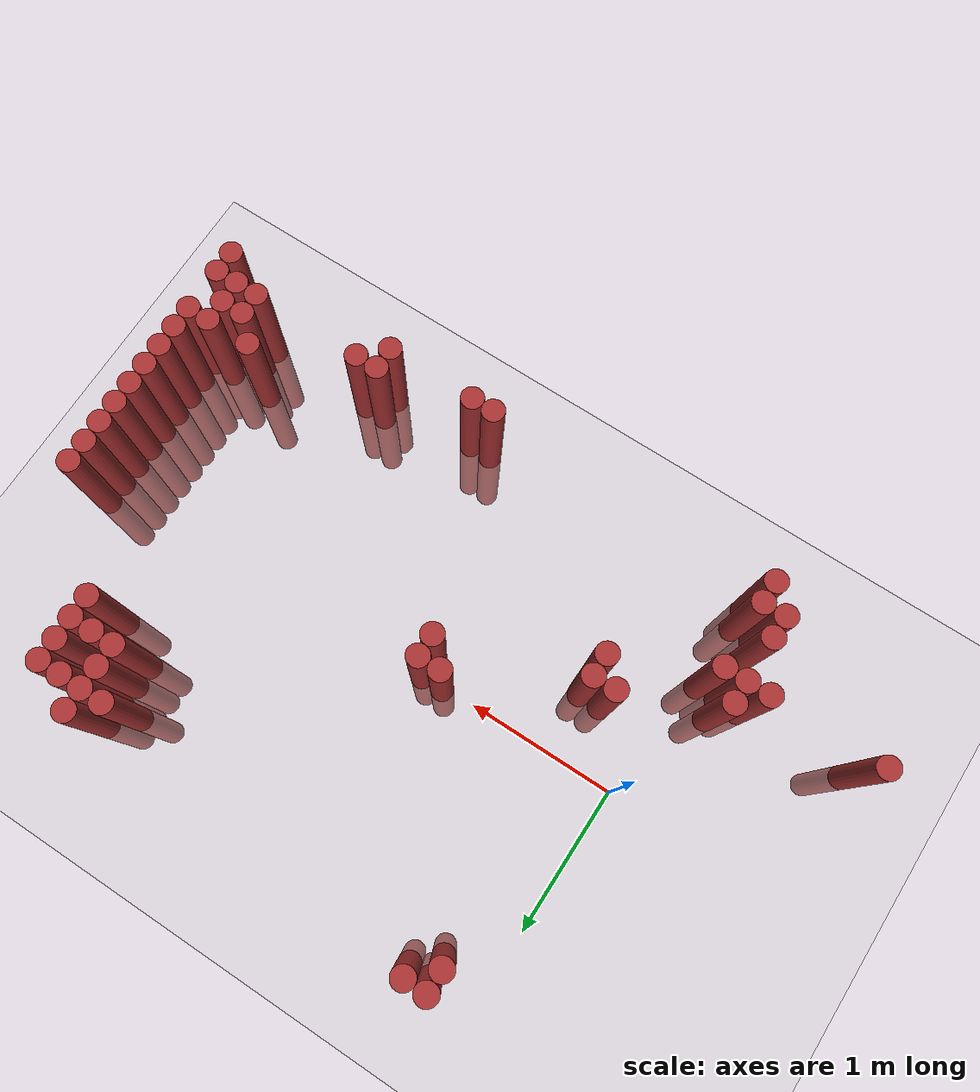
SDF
<sdf version="1.6">
 <world name="default">
  <model name="ground_plane">
   <static>1</static>
   <link name="link">
    <collision name="collision">
     <geometry><plane><normal>0 0 1</normal><size>100 100</size></plane></geometry>
     <surface><friction><ode><mu>100</mu><mu2>50</mu2></ode></friction></surface>
    </collision>
    <visual name="visual">
     <cast_shadows>0</cast_shadows>
     <geometry><plane><normal>0 0 1</normal><size>100 100</size></plane></geometry>
     <material>
      <script><uri>file://media/materials/scripts/gazebo.material</uri><name>Gazebo/Grey</name></script>
     </material>
    </visual>
   </link>
  </model>
  <model name="unit_cylinder_329">
   <static>1</static>
   <pose>-1.175000 -0.875000 0.000000 0.000000 0.000000 0.000000</pose>
   <link name="link">
    <inertial>
     <mass>1</mass>
     <inertia><ixx>0.145833</ixx><ixy>0</ixy><ixz>0</ixz><iyy>0.145833</iyy><iyz>0</iyz><izz>0.125</izz></inertia>
    </inertial>
    <collision name="collision">
     <geometry><cylinder><radius>0.075000</radius><length>1.5</length></cylinder></geometry>
    </collision>
    <visual name="visual">
     <geometry><cylinder><radius>0.075000</radius><length>1.5</length></cylinder></geometry>
     <material>
      <ambient>0.648000 0.192000 0.192000 1</ambient>
      <diffuse>0.648000 0.192000 0.192000 1</diffuse>
     </material>
     <material>
      <script><name>Gazebo/Grey</name><uri>file://media/materials/scripts/gazebo.material</uri></script>
     </material>
    </visual>
   </link>
  </model>
  <model name="unit_cylinder_340">
   <static>1</static>
   <pose>-0.425000 -0.875000 0.000000 0.000000 0.000000 0.000000</pose>
   <link name="link">
    <inertial>
     <mass>1</mass>
     <inertia><ixx>0.145833</ixx><ixy>0</ixy><ixz>0</ixz><iyy>0.145833</iyy><iyz>0</iyz><izz>0.125</izz></inertia>
    </inertial>
    <collision name="collision">
     <geometry><cylinder><radius>0.075000</radius><length>1.5</length></cylinder></geometry>
    </collision>
    <visual name="visual">
     <geometry><cylinder><radius>0.075000</radius><length>1.5</length></cylinder></geometry>
     <material>
      <ambient>0.648000 0.192000 0.192000 1</ambient>
      <diffuse>0.648000 0.192000 0.192000 1</diffuse>
     </material>
     <material>
      <script><name>Gazebo/Grey</name><uri>file://media/materials/scripts/gazebo.material</uri></script>
     </material>
    </visual>
   </link>
  </model>
  <model name="unit_cylinder_341">
   <static>1</static>
   <pose>-0.275000 -1.325000 0.000000 0.000000 0.000000 0.000000</pose>
   <link name="link">
    <inertial>
     <mass>1</mass>
     <inertia><ixx>0.145833</ixx><ixy>0</ixy><ixz>0</ixz><iyy>0.145833</iyy><iyz>0</iyz><izz>0.125</izz></inertia>
    </inertial>
    <collision name="collision">
     <geometry><cylinder><radius>0.075000</radius><length>1.5</length></cylinder></geometry>
    </collision>
    <visual name="visual">
     <geometry><cylinder><radius>0.075000</radius><length>1.5</length></cylinder></geometry>
     <material>
      <ambient>0.648000 0.192000 0.192000 1</ambient>
      <diffuse>0.648000 0.192000 0.192000 1</diffuse>
     </material>
     <material>
      <script><name>Gazebo/Grey</name><uri>file://media/materials/scripts/gazebo.material</uri></script>
     </material>
    </visual>
   </link>
  </model>
  <model name="unit_cylinder_342">
   <static>1</static>
   <pose>-0.275000 -1.175000 0.000000 0.000000 0.000000 0.000000</pose>
   <link name="link">
    <inertial>
     <mass>1</mass>
     <inertia><ixx>0.145833</ixx><ixy>0</ixy><ixz>0</ixz><iyy>0.145833</iyy><iyz>0</iyz><izz>0.125</izz></inertia>
    </inertial>
    <collision name="collision">
     <geometry><cylinder><radius>0.075000</radius><length>1.5</length></cylinder></geometry>
    </collision>
    <visual name="visual">
     <geometry><cylinder><radius>0.075000</radius><length>1.5</length></cylinder></geometry>
     <material>
      <ambient>0.648000 0.192000 0.192000 1</ambient>
      <diffuse>0.648000 0.192000 0.192000 1</diffuse>
     </material>
     <material>
      <script><name>Gazebo/Grey</name><uri>file://media/materials/scripts/gazebo.material</uri></script>
     </material>
    </visual>
   </link>
  </model>
  <model name="unit_cylinder_343">
   <static>1</static>
   <pose>-0.275000 -0.875000 0.000000 0.000000 0.000000 0.000000</pose>
   <link name="link">
    <inertial>
     <mass>1</mass>
     <inertia><ixx>0.145833</ixx><ixy>0</ixy><ixz>0</ixz><iyy>0.145833</iyy><iyz>0</iyz><izz>0.125</izz></inertia>
    </inertial>
    <collision name="collision">
     <geometry><cylinder><radius>0.075000</radius><length>1.5</length></cylinder></geometry>
    </collision>
    <visual name="visual">
     <geometry><cylinder><radius>0.075000</radius><length>1.5</length></cylinder></geometry>
     <material>
      <ambient>0.648000 0.192000 0.192000 1</ambient>
      <diffuse>0.648000 0.192000 0.192000 1</diffuse>
     </material>
     <material>
      <script><name>Gazebo/Grey</name><uri>file://media/materials/scripts/gazebo.material</uri></script>
     </material>
    </visual>
   </link>
  </model>
  <model name="unit_cylinder_344">
   <static>1</static>
   <pose>-0.275000 -0.725000 0.000000 0.000000 0.000000 0.000000</pose>
   <link name="link">
    <inertial>
     <mass>1</mass>
     <inertia><ixx>0.145833</ixx><ixy>0</ixy><ixz>0</ixz><iyy>0.145833</iyy><iyz>0</iyz><izz>0.125</izz></inertia>
    </inertial>
    <collision name="collision">
     <geometry><cylinder><radius>0.075000</radius><length>1.5</length></cylinder></geometry>
    </collision>
    <visual name="visual">
     <geometry><cylinder><radius>0.075000</radius><length>1.5</length></cylinder></geometry>
     <material>
      <ambient>0.648000 0.192000 0.192000 1</ambient>
      <diffuse>0.648000 0.192000 0.192000 1</diffuse>
     </material>
     <material>
      <script><name>Gazebo/Grey</name><uri>file://media/materials/scripts/gazebo.material</uri></script>
     </material>
    </visual>
   </link>
  </model>
  <model name="unit_cylinder_345">
   <static>1</static>
   <pose>-0.125000 -1.475000 0.000000 0.000000 0.000000 0.000000</pose>
   <link name="link">
    <inertial>
     <mass>1</mass>
     <inertia><ixx>0.145833</ixx><ixy>0</ixy><ixz>0</ixz><iyy>0.145833</iyy><iyz>0</iyz><izz>0.125</izz></inertia>
    </inertial>
    <collision name="collision">
     <geometry><cylinder><radius>0.075000</radius><length>1.5</length></cylinder></geometry>
    </collision>
    <visual name="visual">
     <geometry><cylinder><radius>0.075000</radius><length>1.5</length></cylinder></geometry>
     <material>
      <ambient>0.648000 0.192000 0.192000 1</ambient>
      <diffuse>0.648000 0.192000 0.192000 1</diffuse>
     </material>
     <material>
      <script><name>Gazebo/Grey</name><uri>file://media/materials/scripts/gazebo.material</uri></script>
     </material>
    </visual>
   </link>
  </model>
  <model name="unit_cylinder_346">
   <static>1</static>
   <pose>-0.125000 -1.325000 0.000000 0.000000 0.000000 0.000000</pose>
   <link name="link">
    <inertial>
     <mass>1</mass>
     <inertia><ixx>0.145833</ixx><ixy>0</ixy><ixz>0</ixz><iyy>0.145833</iyy><iyz>0</iyz><izz>0.125</izz></inertia>
    </inertial>
    <collision name="collision">
     <geometry><cylinder><radius>0.075000</radius><length>1.5</length></cylinder></geometry>
    </collision>
    <visual name="visual">
     <geometry><cylinder><radius>0.075000</radius><length>1.5</length></cylinder></geometry>
     <material>
      <ambient>0.648000 0.192000 0.192000 1</ambient>
      <diffuse>0.648000 0.192000 0.192000 1</diffuse>
     </material>
     <material>
      <script><name>Gazebo/Grey</name><uri>file://media/materials/scripts/gazebo.material</uri></script>
     </material>
    </visual>
   </link>
  </model>
  <model name="unit_cylinder_347">
   <static>1</static>
   <pose>-0.125000 -0.875000 0.000000 0.000000 0.000000 0.000000</pose>
   <link name="link">
    <inertial>
     <mass>1</mass>
     <inertia><ixx>0.145833</ixx><ixy>0</ixy><ixz>0</ixz><iyy>0.145833</iyy><iyz>0</iyz><izz>0.125</izz></inertia>
    </inertial>
    <collision name="collision">
     <geometry><cylinder><radius>0.075000</radius><length>1.5</length></cylinder></geometry>
    </collision>
    <visual name="visual">
     <geometry><cylinder><radius>0.075000</radius><length>1.5</length></cylinder></geometry>
     <material>
      <ambient>0.648000 0.192000 0.192000 1</ambient>
      <diffuse>0.648000 0.192000 0.192000 1</diffuse>
     </material>
     <material>
      <script><name>Gazebo/Grey</name><uri>file://media/materials/scripts/gazebo.material</uri></script>
     </material>
    </visual>
   </link>
  </model>
  <model name="unit_cylinder_348">
   <static>1</static>
   <pose>0.325000 -0.425000 0.000000 0.000000 0.000000 0.000000</pose>
   <link name="link">
    <inertial>
     <mass>1</mass>
     <inertia><ixx>0.145833</ixx><ixy>0</ixy><ixz>0</ixz><iyy>0.145833</iyy><iyz>0</iyz><izz>0.125</izz></inertia>
    </inertial>
    <collision name="collision">
     <geometry><cylinder><radius>0.075000</radius><length>1.5</length></cylinder></geometry>
    </collision>
    <visual name="visual">
     <geometry><cylinder><radius>0.075000</radius><length>1.5</length></cylinder></geometry>
     <material>
      <ambient>0.648000 0.192000 0.192000 1</ambient>
      <diffuse>0.648000 0.192000 0.192000 1</diffuse>
     </material>
     <material>
      <script><name>Gazebo/Grey</name><uri>file://media/materials/scripts/gazebo.material</uri></script>
     </material>
    </visual>
   </link>
  </model>
  <model name="unit_cylinder_349">
   <static>1</static>
   <pose>0.325000 1.375000 0.000000 0.000000 0.000000 0.000000</pose>
   <link name="link">
    <inertial>
     <mass>1</mass>
     <inertia><ixx>0.145833</ixx><ixy>0</ixy><ixz>0</ixz><iyy>0.145833</iyy><iyz>0</iyz><izz>0.125</izz></inertia>
    </inertial>
    <collision name="collision">
     <geometry><cylinder><radius>0.075000</radius><length>1.5</length></cylinder></geometry>
    </collision>
    <visual name="visual">
     <geometry><cylinder><radius>0.075000</radius><length>1.5</length></cylinder></geometry>
     <material>
      <ambient>0.648000 0.192000 0.192000 1</ambient>
      <diffuse>0.648000 0.192000 0.192000 1</diffuse>
     </material>
     <material>
      <script><name>Gazebo/Grey</name><uri>file://media/materials/scripts/gazebo.material</uri></script>
     </material>
    </visual>
   </link>
  </model>
  <model name="unit_cylinder_350">
   <static>1</static>
   <pose>0.325000 1.525000 0.000000 0.000000 0.000000 0.000000</pose>
   <link name="link">
    <inertial>
     <mass>1</mass>
     <inertia><ixx>0.145833</ixx><ixy>0</ixy><ixz>0</ixz><iyy>0.145833</iyy><iyz>0</iyz><izz>0.125</izz></inertia>
    </inertial>
    <collision name="collision">
     <geometry><cylinder><radius>0.075000</radius><length>1.5</length></cylinder></geometry>
    </collision>
    <visual name="visual">
     <geometry><cylinder><radius>0.075000</radius><length>1.5</length></cylinder></geometry>
     <material>
      <ambient>0.648000 0.192000 0.192000 1</ambient>
      <diffuse>0.648000 0.192000 0.192000 1</diffuse>
     </material>
     <material>
      <script><name>Gazebo/Grey</name><uri>file://media/materials/scripts/gazebo.material</uri></script>
     </material>
    </visual>
   </link>
  </model>
  <model name="unit_cylinder_351">
   <static>1</static>
   <pose>0.475000 -0.575000 0.000000 0.000000 0.000000 0.000000</pose>
   <link name="link">
    <inertial>
     <mass>1</mass>
     <inertia><ixx>0.145833</ixx><ixy>0</ixy><ixz>0</ixz><iyy>0.145833</iyy><iyz>0</iyz><izz>0.125</izz></inertia>
    </inertial>
    <collision name="collision">
     <geometry><cylinder><radius>0.075000</radius><length>1.5</length></cylinder></geometry>
    </collision>
    <visual name="visual">
     <geometry><cylinder><radius>0.075000</radius><length>1.5</length></cylinder></geometry>
     <material>
      <ambient>0.648000 0.192000 0.192000 1</ambient>
      <diffuse>0.648000 0.192000 0.192000 1</diffuse>
     </material>
     <material>
      <script><name>Gazebo/Grey</name><uri>file://media/materials/scripts/gazebo.material</uri></script>
     </material>
    </visual>
   </link>
  </model>
  <model name="unit_cylinder_352">
   <static>1</static>
   <pose>0.475000 -0.425000 0.000000 0.000000 0.000000 0.000000</pose>
   <link name="link">
    <inertial>
     <mass>1</mass>
     <inertia><ixx>0.145833</ixx><ixy>0</ixy><ixz>0</ixz><iyy>0.145833</iyy><iyz>0</iyz><izz>0.125</izz></inertia>
    </inertial>
    <collision name="collision">
     <geometry><cylinder><radius>0.075000</radius><length>1.5</length></cylinder></geometry>
    </collision>
    <visual name="visual">
     <geometry><cylinder><radius>0.075000</radius><length>1.5</length></cylinder></geometry>
     <material>
      <ambient>0.648000 0.192000 0.192000 1</ambient>
      <diffuse>0.648000 0.192000 0.192000 1</diffuse>
     </material>
     <material>
      <script><name>Gazebo/Grey</name><uri>file://media/materials/scripts/gazebo.material</uri></script>
     </material>
    </visual>
   </link>
  </model>
  <model name="unit_cylinder_353">
   <static>1</static>
   <pose>0.475000 1.525000 0.000000 0.000000 0.000000 0.000000</pose>
   <link name="link">
    <inertial>
     <mass>1</mass>
     <inertia><ixx>0.145833</ixx><ixy>0</ixy><ixz>0</ixz><iyy>0.145833</iyy><iyz>0</iyz><izz>0.125</izz></inertia>
    </inertial>
    <collision name="collision">
     <geometry><cylinder><radius>0.075000</radius><length>1.5</length></cylinder></geometry>
    </collision>
    <visual name="visual">
     <geometry><cylinder><radius>0.075000</radius><length>1.5</length></cylinder></geometry>
     <material>
      <ambient>0.648000 0.192000 0.192000 1</ambient>
      <diffuse>0.648000 0.192000 0.192000 1</diffuse>
     </material>
     <material>
      <script><name>Gazebo/Grey</name><uri>file://media/materials/scripts/gazebo.material</uri></script>
     </material>
    </visual>
   </link>
  </model>
  <model name="unit_cylinder_367">
   <static>1</static>
   <pose>1.225000 0.025000 0.000000 0.000000 0.000000 0.000000</pose>
   <link name="link">
    <inertial>
     <mass>1</mass>
     <inertia><ixx>0.145833</ixx><ixy>0</ixy><ixz>0</ixz><iyy>0.145833</iyy><iyz>0</iyz><izz>0.125</izz></inertia>
    </inertial>
    <collision name="collision">
     <geometry><cylinder><radius>0.075000</radius><length>1.5</length></cylinder></geometry>
    </collision>
    <visual name="visual">
     <geometry><cylinder><radius>0.075000</radius><length>1.5</length></cylinder></geometry>
     <material>
      <ambient>0.648000 0.192000 0.192000 1</ambient>
      <diffuse>0.648000 0.192000 0.192000 1</diffuse>
     </material>
     <material>
      <script><name>Gazebo/Grey</name><uri>file://media/materials/scripts/gazebo.material</uri></script>
     </material>
    </visual>
   </link>
  </model>
  <model name="unit_cylinder_370">
   <static>1</static>
   <pose>1.375000 -0.125000 0.000000 0.000000 0.000000 0.000000</pose>
   <link name="link">
    <inertial>
     <mass>1</mass>
     <inertia><ixx>0.145833</ixx><ixy>0</ixy><ixz>0</ixz><iyy>0.145833</iyy><iyz>0</iyz><izz>0.125</izz></inertia>
    </inertial>
    <collision name="collision">
     <geometry><cylinder><radius>0.075000</radius><length>1.5</length></cylinder></geometry>
    </collision>
    <visual name="visual">
     <geometry><cylinder><radius>0.075000</radius><length>1.5</length></cylinder></geometry>
     <material>
      <ambient>0.648000 0.192000 0.192000 1</ambient>
      <diffuse>0.648000 0.192000 0.192000 1</diffuse>
     </material>
     <material>
      <script><name>Gazebo/Grey</name><uri>file://media/materials/scripts/gazebo.material</uri></script>
     </material>
    </visual>
   </link>
  </model>
  <model name="unit_cylinder_371">
   <static>1</static>
   <pose>1.375000 0.025000 0.000000 0.000000 0.000000 0.000000</pose>
   <link name="link">
    <inertial>
     <mass>1</mass>
     <inertia><ixx>0.145833</ixx><ixy>0</ixy><ixz>0</ixz><iyy>0.145833</iyy><iyz>0</iyz><izz>0.125</izz></inertia>
    </inertial>
    <collision name="collision">
     <geometry><cylinder><radius>0.075000</radius><length>1.5</length></cylinder></geometry>
    </collision>
    <visual name="visual">
     <geometry><cylinder><radius>0.075000</radius><length>1.5</length></cylinder></geometry>
     <material>
      <ambient>0.648000 0.192000 0.192000 1</ambient>
      <diffuse>0.648000 0.192000 0.192000 1</diffuse>
     </material>
     <material>
      <script><name>Gazebo/Grey</name><uri>file://media/materials/scripts/gazebo.material</uri></script>
     </material>
    </visual>
   </link>
  </model>
  <model name="unit_cylinder_373">
   <static>1</static>
   <pose>1.825000 -1.475000 0.000000 0.000000 0.000000 0.000000</pose>
   <link name="link">
    <inertial>
     <mass>1</mass>
     <inertia><ixx>0.145833</ixx><ixy>0</ixy><ixz>0</ixz><iyy>0.145833</iyy><iyz>0</iyz><izz>0.125</izz></inertia>
    </inertial>
    <collision name="collision">
     <geometry><cylinder><radius>0.075000</radius><length>1.5</length></cylinder></geometry>
    </collision>
    <visual name="visual">
     <geometry><cylinder><radius>0.075000</radius><length>1.5</length></cylinder></geometry>
     <material>
      <ambient>0.648000 0.192000 0.192000 1</ambient>
      <diffuse>0.648000 0.192000 0.192000 1</diffuse>
     </material>
     <material>
      <script><name>Gazebo/Grey</name><uri>file://media/materials/scripts/gazebo.material</uri></script>
     </material>
    </visual>
   </link>
  </model>
  <model name="unit_cylinder_375">
   <static>1</static>
   <pose>1.975000 -1.475000 0.000000 0.000000 0.000000 0.000000</pose>
   <link name="link">
    <inertial>
     <mass>1</mass>
     <inertia><ixx>0.145833</ixx><ixy>0</ixy><ixz>0</ixz><iyy>0.145833</iyy><iyz>0</iyz><izz>0.125</izz></inertia>
    </inertial>
    <collision name="collision">
     <geometry><cylinder><radius>0.075000</radius><length>1.5</length></cylinder></geometry>
    </collision>
    <visual name="visual">
     <geometry><cylinder><radius>0.075000</radius><length>1.5</length></cylinder></geometry>
     <material>
      <ambient>0.648000 0.192000 0.192000 1</ambient>
      <diffuse>0.648000 0.192000 0.192000 1</diffuse>
     </material>
     <material>
      <script><name>Gazebo/Grey</name><uri>file://media/materials/scripts/gazebo.material</uri></script>
     </material>
    </visual>
   </link>
  </model>
  <model name="unit_cylinder_391">
   <static>1</static>
   <pose>2.575000 -1.475000 0.000000 0.000000 0.000000 0.000000</pose>
   <link name="link">
    <inertial>
     <mass>1</mass>
     <inertia><ixx>0.145833</ixx><ixy>0</ixy><ixz>0</ixz><iyy>0.145833</iyy><iyz>0</iyz><izz>0.125</izz></inertia>
    </inertial>
    <collision name="collision">
     <geometry><cylinder><radius>0.075000</radius><length>1.5</length></cylinder></geometry>
    </collision>
    <visual name="visual">
     <geometry><cylinder><radius>0.075000</radius><length>1.5</length></cylinder></geometry>
     <material>
      <ambient>0.648000 0.192000 0.192000 1</ambient>
      <diffuse>0.648000 0.192000 0.192000 1</diffuse>
     </material>
     <material>
      <script><name>Gazebo/Grey</name><uri>file://media/materials/scripts/gazebo.material</uri></script>
     </material>
    </visual>
   </link>
  </model>
  <model name="unit_cylinder_392">
   <static>1</static>
   <pose>2.575000 -1.325000 0.000000 0.000000 0.000000 0.000000</pose>
   <link name="link">
    <inertial>
     <mass>1</mass>
     <inertia><ixx>0.145833</ixx><ixy>0</ixy><ixz>0</ixz><iyy>0.145833</iyy><iyz>0</iyz><izz>0.125</izz></inertia>
    </inertial>
    <collision name="collision">
     <geometry><cylinder><radius>0.075000</radius><length>1.5</length></cylinder></geometry>
    </collision>
    <visual name="visual">
     <geometry><cylinder><radius>0.075000</radius><length>1.5</length></cylinder></geometry>
     <material>
      <ambient>0.648000 0.192000 0.192000 1</ambient>
      <diffuse>0.648000 0.192000 0.192000 1</diffuse>
     </material>
     <material>
      <script><name>Gazebo/Grey</name><uri>file://media/materials/scripts/gazebo.material</uri></script>
     </material>
    </visual>
   </link>
  </model>
  <model name="unit_cylinder_400">
   <static>1</static>
   <pose>2.725000 -1.325000 0.000000 0.000000 0.000000 0.000000</pose>
   <link name="link">
    <inertial>
     <mass>1</mass>
     <inertia><ixx>0.145833</ixx><ixy>0</ixy><ixz>0</ixz><iyy>0.145833</iyy><iyz>0</iyz><izz>0.125</izz></inertia>
    </inertial>
    <collision name="collision">
     <geometry><cylinder><radius>0.075000</radius><length>1.5</length></cylinder></geometry>
    </collision>
    <visual name="visual">
     <geometry><cylinder><radius>0.075000</radius><length>1.5</length></cylinder></geometry>
     <material>
      <ambient>0.648000 0.192000 0.192000 1</ambient>
      <diffuse>0.648000 0.192000 0.192000 1</diffuse>
     </material>
     <material>
      <script><name>Gazebo/Grey</name><uri>file://media/materials/scripts/gazebo.material</uri></script>
     </material>
    </visual>
   </link>
  </model>
  <model name="unit_cylinder_401">
   <static>1</static>
   <pose>2.725000 1.225000 0.000000 0.000000 0.000000 0.000000</pose>
   <link name="link">
    <inertial>
     <mass>1</mass>
     <inertia><ixx>0.145833</ixx><ixy>0</ixy><ixz>0</ixz><iyy>0.145833</iyy><iyz>0</iyz><izz>0.125</izz></inertia>
    </inertial>
    <collision name="collision">
     <geometry><cylinder><radius>0.075000</radius><length>1.5</length></cylinder></geometry>
    </collision>
    <visual name="visual">
     <geometry><cylinder><radius>0.075000</radius><length>1.5</length></cylinder></geometry>
     <material>
      <ambient>0.648000 0.192000 0.192000 1</ambient>
      <diffuse>0.648000 0.192000 0.192000 1</diffuse>
     </material>
     <material>
      <script><name>Gazebo/Grey</name><uri>file://media/materials/scripts/gazebo.material</uri></script>
     </material>
    </visual>
   </link>
  </model>
  <model name="unit_cylinder_405">
   <static>1</static>
   <pose>2.875000 0.925000 0.000000 0.000000 0.000000 0.000000</pose>
   <link name="link">
    <inertial>
     <mass>1</mass>
     <inertia><ixx>0.145833</ixx><ixy>0</ixy><ixz>0</ixz><iyy>0.145833</iyy><iyz>0</iyz><izz>0.125</izz></inertia>
    </inertial>
    <collision name="collision">
     <geometry><cylinder><radius>0.075000</radius><length>1.5</length></cylinder></geometry>
    </collision>
    <visual name="visual">
     <geometry><cylinder><radius>0.075000</radius><length>1.5</length></cylinder></geometry>
     <material>
      <ambient>0.648000 0.192000 0.192000 1</ambient>
      <diffuse>0.648000 0.192000 0.192000 1</diffuse>
     </material>
     <material>
      <script><name>Gazebo/Grey</name><uri>file://media/materials/scripts/gazebo.material</uri></script>
     </material>
    </visual>
   </link>
  </model>
  <model name="unit_cylinder_406">
   <static>1</static>
   <pose>2.875000 1.075000 0.000000 0.000000 0.000000 0.000000</pose>
   <link name="link">
    <inertial>
     <mass>1</mass>
     <inertia><ixx>0.145833</ixx><ixy>0</ixy><ixz>0</ixz><iyy>0.145833</iyy><iyz>0</iyz><izz>0.125</izz></inertia>
    </inertial>
    <collision name="collision">
     <geometry><cylinder><radius>0.075000</radius><length>1.5</length></cylinder></geometry>
    </collision>
    <visual name="visual">
     <geometry><cylinder><radius>0.075000</radius><length>1.5</length></cylinder></geometry>
     <material>
      <ambient>0.648000 0.192000 0.192000 1</ambient>
      <diffuse>0.648000 0.192000 0.192000 1</diffuse>
     </material>
     <material>
      <script><name>Gazebo/Grey</name><uri>file://media/materials/scripts/gazebo.material</uri></script>
     </material>
    </visual>
   </link>
  </model>
  <model name="unit_cylinder_407">
   <static>1</static>
   <pose>2.875000 1.225000 0.000000 0.000000 0.000000 0.000000</pose>
   <link name="link">
    <inertial>
     <mass>1</mass>
     <inertia><ixx>0.145833</ixx><ixy>0</ixy><ixz>0</ixz><iyy>0.145833</iyy><iyz>0</iyz><izz>0.125</izz></inertia>
    </inertial>
    <collision name="collision">
     <geometry><cylinder><radius>0.075000</radius><length>1.5</length></cylinder></geometry>
    </collision>
    <visual name="visual">
     <geometry><cylinder><radius>0.075000</radius><length>1.5</length></cylinder></geometry>
     <material>
      <ambient>0.648000 0.192000 0.192000 1</ambient>
      <diffuse>0.648000 0.192000 0.192000 1</diffuse>
     </material>
     <material>
      <script><name>Gazebo/Grey</name><uri>file://media/materials/scripts/gazebo.material</uri></script>
     </material>
    </visual>
   </link>
  </model>
  <model name="unit_cylinder_408">
   <static>1</static>
   <pose>2.875000 1.375000 0.000000 0.000000 0.000000 0.000000</pose>
   <link name="link">
    <inertial>
     <mass>1</mass>
     <inertia><ixx>0.145833</ixx><ixy>0</ixy><ixz>0</ixz><iyy>0.145833</iyy><iyz>0</iyz><izz>0.125</izz></inertia>
    </inertial>
    <collision name="collision">
     <geometry><cylinder><radius>0.075000</radius><length>1.5</length></cylinder></geometry>
    </collision>
    <visual name="visual">
     <geometry><cylinder><radius>0.075000</radius><length>1.5</length></cylinder></geometry>
     <material>
      <ambient>0.648000 0.192000 0.192000 1</ambient>
      <diffuse>0.648000 0.192000 0.192000 1</diffuse>
     </material>
     <material>
      <script><name>Gazebo/Grey</name><uri>file://media/materials/scripts/gazebo.material</uri></script>
     </material>
    </visual>
   </link>
  </model>
  <model name="unit_cylinder_409">
   <static>1</static>
   <pose>3.025000 0.925000 0.000000 0.000000 0.000000 0.000000</pose>
   <link name="link">
    <inertial>
     <mass>1</mass>
     <inertia><ixx>0.145833</ixx><ixy>0</ixy><ixz>0</ixz><iyy>0.145833</iyy><iyz>0</iyz><izz>0.125</izz></inertia>
    </inertial>
    <collision name="collision">
     <geometry><cylinder><radius>0.075000</radius><length>1.5</length></cylinder></geometry>
    </collision>
    <visual name="visual">
     <geometry><cylinder><radius>0.075000</radius><length>1.5</length></cylinder></geometry>
     <material>
      <ambient>0.648000 0.192000 0.192000 1</ambient>
      <diffuse>0.648000 0.192000 0.192000 1</diffuse>
     </material>
     <material>
      <script><name>Gazebo/Grey</name><uri>file://media/materials/scripts/gazebo.material</uri></script>
     </material>
    </visual>
   </link>
  </model>
  <model name="unit_cylinder_410">
   <static>1</static>
   <pose>3.025000 1.225000 0.000000 0.000000 0.000000 0.000000</pose>
   <link name="link">
    <inertial>
     <mass>1</mass>
     <inertia><ixx>0.145833</ixx><ixy>0</ixy><ixz>0</ixz><iyy>0.145833</iyy><iyz>0</iyz><izz>0.125</izz></inertia>
    </inertial>
    <collision name="collision">
     <geometry><cylinder><radius>0.075000</radius><length>1.5</length></cylinder></geometry>
    </collision>
    <visual name="visual">
     <geometry><cylinder><radius>0.075000</radius><length>1.5</length></cylinder></geometry>
     <material>
      <ambient>0.648000 0.192000 0.192000 1</ambient>
      <diffuse>0.648000 0.192000 0.192000 1</diffuse>
     </material>
     <material>
      <script><name>Gazebo/Grey</name><uri>file://media/materials/scripts/gazebo.material</uri></script>
     </material>
    </visual>
   </link>
  </model>
  <model name="unit_cylinder_413">
   <static>1</static>
   <pose>3.175000 0.775000 0.000000 0.000000 0.000000 0.000000</pose>
   <link name="link">
    <inertial>
     <mass>1</mass>
     <inertia><ixx>0.145833</ixx><ixy>0</ixy><ixz>0</ixz><iyy>0.145833</iyy><iyz>0</iyz><izz>0.125</izz></inertia>
    </inertial>
    <collision name="collision">
     <geometry><cylinder><radius>0.075000</radius><length>1.5</length></cylinder></geometry>
    </collision>
    <visual name="visual">
     <geometry><cylinder><radius>0.075000</radius><length>1.5</length></cylinder></geometry>
     <material>
      <ambient>0.648000 0.192000 0.192000 1</ambient>
      <diffuse>0.648000 0.192000 0.192000 1</diffuse>
     </material>
     <material>
      <script><name>Gazebo/Grey</name><uri>file://media/materials/scripts/gazebo.material</uri></script>
     </material>
    </visual>
   </link>
  </model>
  <model name="unit_cylinder_414">
   <static>1</static>
   <pose>3.175000 0.925000 0.000000 0.000000 0.000000 0.000000</pose>
   <link name="link">
    <inertial>
     <mass>1</mass>
     <inertia><ixx>0.145833</ixx><ixy>0</ixy><ixz>0</ixz><iyy>0.145833</iyy><iyz>0</iyz><izz>0.125</izz></inertia>
    </inertial>
    <collision name="collision">
     <geometry><cylinder><radius>0.075000</radius><length>1.5</length></cylinder></geometry>
    </collision>
    <visual name="visual">
     <geometry><cylinder><radius>0.075000</radius><length>1.5</length></cylinder></geometry>
     <material>
      <ambient>0.648000 0.192000 0.192000 1</ambient>
      <diffuse>0.648000 0.192000 0.192000 1</diffuse>
     </material>
     <material>
      <script><name>Gazebo/Grey</name><uri>file://media/materials/scripts/gazebo.material</uri></script>
     </material>
    </visual>
   </link>
  </model>
  <model name="unit_cylinder_415">
   <static>1</static>
   <pose>3.175000 1.075000 0.000000 0.000000 0.000000 0.000000</pose>
   <link name="link">
    <inertial>
     <mass>1</mass>
     <inertia><ixx>0.145833</ixx><ixy>0</ixy><ixz>0</ixz><iyy>0.145833</iyy><iyz>0</iyz><izz>0.125</izz></inertia>
    </inertial>
    <collision name="collision">
     <geometry><cylinder><radius>0.075000</radius><length>1.5</length></cylinder></geometry>
    </collision>
    <visual name="visual">
     <geometry><cylinder><radius>0.075000</radius><length>1.5</length></cylinder></geometry>
     <material>
      <ambient>0.648000 0.192000 0.192000 1</ambient>
      <diffuse>0.648000 0.192000 0.192000 1</diffuse>
     </material>
     <material>
      <script><name>Gazebo/Grey</name><uri>file://media/materials/scripts/gazebo.material</uri></script>
     </material>
    </visual>
   </link>
  </model>
  <model name="unit_cylinder_416">
   <static>1</static>
   <pose>3.175000 1.225000 0.000000 0.000000 0.000000 0.000000</pose>
   <link name="link">
    <inertial>
     <mass>1</mass>
     <inertia><ixx>0.145833</ixx><ixy>0</ixy><ixz>0</ixz><iyy>0.145833</iyy><iyz>0</iyz><izz>0.125</izz></inertia>
    </inertial>
    <collision name="collision">
     <geometry><cylinder><radius>0.075000</radius><length>1.5</length></cylinder></geometry>
    </collision>
    <visual name="visual">
     <geometry><cylinder><radius>0.075000</radius><length>1.5</length></cylinder></geometry>
     <material>
      <ambient>0.648000 0.192000 0.192000 1</ambient>
      <diffuse>0.648000 0.192000 0.192000 1</diffuse>
     </material>
     <material>
      <script><name>Gazebo/Grey</name><uri>file://media/materials/scripts/gazebo.material</uri></script>
     </material>
    </visual>
   </link>
  </model>
  <model name="unit_cylinder_420">
   <static>1</static>
   <pose>3.325000 -1.025000 0.000000 0.000000 0.000000 0.000000</pose>
   <link name="link">
    <inertial>
     <mass>1</mass>
     <inertia><ixx>0.145833</ixx><ixy>0</ixy><ixz>0</ixz><iyy>0.145833</iyy><iyz>0</iyz><izz>0.125</izz></inertia>
    </inertial>
    <collision name="collision">
     <geometry><cylinder><radius>0.075000</radius><length>1.5</length></cylinder></geometry>
    </collision>
    <visual name="visual">
     <geometry><cylinder><radius>0.075000</radius><length>1.5</length></cylinder></geometry>
     <material>
      <ambient>0.648000 0.192000 0.192000 1</ambient>
      <diffuse>0.648000 0.192000 0.192000 1</diffuse>
     </material>
     <material>
      <script><name>Gazebo/Grey</name><uri>file://media/materials/scripts/gazebo.material</uri></script>
     </material>
    </visual>
   </link>
  </model>
  <model name="unit_cylinder_424">
   <static>1</static>
   <pose>3.475000 -1.325000 0.000000 0.000000 0.000000 0.000000</pose>
   <link name="link">
    <inertial>
     <mass>1</mass>
     <inertia><ixx>0.145833</ixx><ixy>0</ixy><ixz>0</ixz><iyy>0.145833</iyy><iyz>0</iyz><izz>0.125</izz></inertia>
    </inertial>
    <collision name="collision">
     <geometry><cylinder><radius>0.075000</radius><length>1.5</length></cylinder></geometry>
    </collision>
    <visual name="visual">
     <geometry><cylinder><radius>0.075000</radius><length>1.5</length></cylinder></geometry>
     <material>
      <ambient>0.648000 0.192000 0.192000 1</ambient>
      <diffuse>0.648000 0.192000 0.192000 1</diffuse>
     </material>
     <material>
      <script><name>Gazebo/Grey</name><uri>file://media/materials/scripts/gazebo.material</uri></script>
     </material>
    </visual>
   </link>
  </model>
  <model name="unit_cylinder_425">
   <static>1</static>
   <pose>3.475000 -1.175000 0.000000 0.000000 0.000000 0.000000</pose>
   <link name="link">
    <inertial>
     <mass>1</mass>
     <inertia><ixx>0.145833</ixx><ixy>0</ixy><ixz>0</ixz><iyy>0.145833</iyy><iyz>0</iyz><izz>0.125</izz></inertia>
    </inertial>
    <collision name="collision">
     <geometry><cylinder><radius>0.075000</radius><length>1.5</length></cylinder></geometry>
    </collision>
    <visual name="visual">
     <geometry><cylinder><radius>0.075000</radius><length>1.5</length></cylinder></geometry>
     <material>
      <ambient>0.648000 0.192000 0.192000 1</ambient>
      <diffuse>0.648000 0.192000 0.192000 1</diffuse>
     </material>
     <material>
      <script><name>Gazebo/Grey</name><uri>file://media/materials/scripts/gazebo.material</uri></script>
     </material>
    </visual>
   </link>
  </model>
  <model name="unit_cylinder_430">
   <static>1</static>
   <pose>3.625000 -1.325000 0.000000 0.000000 0.000000 0.000000</pose>
   <link name="link">
    <inertial>
     <mass>1</mass>
     <inertia><ixx>0.145833</ixx><ixy>0</ixy><ixz>0</ixz><iyy>0.145833</iyy><iyz>0</iyz><izz>0.125</izz></inertia>
    </inertial>
    <collision name="collision">
     <geometry><cylinder><radius>0.075000</radius><length>1.5</length></cylinder></geometry>
    </collision>
    <visual name="visual">
     <geometry><cylinder><radius>0.075000</radius><length>1.5</length></cylinder></geometry>
     <material>
      <ambient>0.648000 0.192000 0.192000 1</ambient>
      <diffuse>0.648000 0.192000 0.192000 1</diffuse>
     </material>
     <material>
      <script><name>Gazebo/Grey</name><uri>file://media/materials/scripts/gazebo.material</uri></script>
     </material>
    </visual>
   </link>
  </model>
  <model name="unit_cylinder_431">
   <static>1</static>
   <pose>3.625000 -1.175000 0.000000 0.000000 0.000000 0.000000</pose>
   <link name="link">
    <inertial>
     <mass>1</mass>
     <inertia><ixx>0.145833</ixx><ixy>0</ixy><ixz>0</ixz><iyy>0.145833</iyy><iyz>0</iyz><izz>0.125</izz></inertia>
    </inertial>
    <collision name="collision">
     <geometry><cylinder><radius>0.075000</radius><length>1.5</length></cylinder></geometry>
    </collision>
    <visual name="visual">
     <geometry><cylinder><radius>0.075000</radius><length>1.5</length></cylinder></geometry>
     <material>
      <ambient>0.648000 0.192000 0.192000 1</ambient>
      <diffuse>0.648000 0.192000 0.192000 1</diffuse>
     </material>
     <material>
      <script><name>Gazebo/Grey</name><uri>file://media/materials/scripts/gazebo.material</uri></script>
     </material>
    </visual>
   </link>
  </model>
  <model name="unit_cylinder_432">
   <static>1</static>
   <pose>3.625000 -1.025000 0.000000 0.000000 0.000000 0.000000</pose>
   <link name="link">
    <inertial>
     <mass>1</mass>
     <inertia><ixx>0.145833</ixx><ixy>0</ixy><ixz>0</ixz><iyy>0.145833</iyy><iyz>0</iyz><izz>0.125</izz></inertia>
    </inertial>
    <collision name="collision">
     <geometry><cylinder><radius>0.075000</radius><length>1.5</length></cylinder></geometry>
    </collision>
    <visual name="visual">
     <geometry><cylinder><radius>0.075000</radius><length>1.5</length></cylinder></geometry>
     <material>
      <ambient>0.648000 0.192000 0.192000 1</ambient>
      <diffuse>0.648000 0.192000 0.192000 1</diffuse>
     </material>
     <material>
      <script><name>Gazebo/Grey</name><uri>file://media/materials/scripts/gazebo.material</uri></script>
     </material>
    </visual>
   </link>
  </model>
  <model name="unit_cylinder_440">
   <static>1</static>
   <pose>3.775000 -1.475000 0.000000 0.000000 0.000000 0.000000</pose>
   <link name="link">
    <inertial>
     <mass>1</mass>
     <inertia><ixx>0.145833</ixx><ixy>0</ixy><ixz>0</ixz><iyy>0.145833</iyy><iyz>0</iyz><izz>0.125</izz></inertia>
    </inertial>
    <collision name="collision">
     <geometry><cylinder><radius>0.075000</radius><length>1.5</length></cylinder></geometry>
    </collision>
    <visual name="visual">
     <geometry><cylinder><radius>0.075000</radius><length>1.5</length></cylinder></geometry>
     <material>
      <ambient>0.648000 0.192000 0.192000 1</ambient>
      <diffuse>0.648000 0.192000 0.192000 1</diffuse>
     </material>
     <material>
      <script><name>Gazebo/Grey</name><uri>file://media/materials/scripts/gazebo.material</uri></script>
     </material>
    </visual>
   </link>
  </model>
  <model name="unit_cylinder_441">
   <static>1</static>
   <pose>3.775000 -1.325000 0.000000 0.000000 0.000000 0.000000</pose>
   <link name="link">
    <inertial>
     <mass>1</mass>
     <inertia><ixx>0.145833</ixx><ixy>0</ixy><ixz>0</ixz><iyy>0.145833</iyy><iyz>0</iyz><izz>0.125</izz></inertia>
    </inertial>
    <collision name="collision">
     <geometry><cylinder><radius>0.075000</radius><length>1.5</length></cylinder></geometry>
    </collision>
    <visual name="visual">
     <geometry><cylinder><radius>0.075000</radius><length>1.5</length></cylinder></geometry>
     <material>
      <ambient>0.648000 0.192000 0.192000 1</ambient>
      <diffuse>0.648000 0.192000 0.192000 1</diffuse>
     </material>
     <material>
      <script><name>Gazebo/Grey</name><uri>file://media/materials/scripts/gazebo.material</uri></script>
     </material>
    </visual>
   </link>
  </model>
  <model name="unit_cylinder_442">
   <static>1</static>
   <pose>3.775000 -1.025000 0.000000 0.000000 0.000000 0.000000</pose>
   <link name="link">
    <inertial>
     <mass>1</mass>
     <inertia><ixx>0.145833</ixx><ixy>0</ixy><ixz>0</ixz><iyy>0.145833</iyy><iyz>0</iyz><izz>0.125</izz></inertia>
    </inertial>
    <collision name="collision">
     <geometry><cylinder><radius>0.075000</radius><length>1.5</length></cylinder></geometry>
    </collision>
    <visual name="visual">
     <geometry><cylinder><radius>0.075000</radius><length>1.5</length></cylinder></geometry>
     <material>
      <ambient>0.648000 0.192000 0.192000 1</ambient>
      <diffuse>0.648000 0.192000 0.192000 1</diffuse>
     </material>
     <material>
      <script><name>Gazebo/Grey</name><uri>file://media/materials/scripts/gazebo.material</uri></script>
     </material>
    </visual>
   </link>
  </model>
  <model name="unit_cylinder_443">
   <static>1</static>
   <pose>3.775000 -0.875000 0.000000 0.000000 0.000000 0.000000</pose>
   <link name="link">
    <inertial>
     <mass>1</mass>
     <inertia><ixx>0.145833</ixx><ixy>0</ixy><ixz>0</ixz><iyy>0.145833</iyy><iyz>0</iyz><izz>0.125</izz></inertia>
    </inertial>
    <collision name="collision">
     <geometry><cylinder><radius>0.075000</radius><length>1.5</length></cylinder></geometry>
    </collision>
    <visual name="visual">
     <geometry><cylinder><radius>0.075000</radius><length>1.5</length></cylinder></geometry>
     <material>
      <ambient>0.648000 0.192000 0.192000 1</ambient>
      <diffuse>0.648000 0.192000 0.192000 1</diffuse>
     </material>
     <material>
      <script><name>Gazebo/Grey</name><uri>file://media/materials/scripts/gazebo.material</uri></script>
     </material>
    </visual>
   </link>
  </model>
  <model name="unit_cylinder_444">
   <static>1</static>
   <pose>3.775000 -0.725000 0.000000 0.000000 0.000000 0.000000</pose>
   <link name="link">
    <inertial>
     <mass>1</mass>
     <inertia><ixx>0.145833</ixx><ixy>0</ixy><ixz>0</ixz><iyy>0.145833</iyy><iyz>0</iyz><izz>0.125</izz></inertia>
    </inertial>
    <collision name="collision">
     <geometry><cylinder><radius>0.075000</radius><length>1.5</length></cylinder></geometry>
    </collision>
    <visual name="visual">
     <geometry><cylinder><radius>0.075000</radius><length>1.5</length></cylinder></geometry>
     <material>
      <ambient>0.648000 0.192000 0.192000 1</ambient>
      <diffuse>0.648000 0.192000 0.192000 1</diffuse>
     </material>
     <material>
      <script><name>Gazebo/Grey</name><uri>file://media/materials/scripts/gazebo.material</uri></script>
     </material>
    </visual>
   </link>
  </model>
  <model name="unit_cylinder_445">
   <static>1</static>
   <pose>3.775000 -0.575000 0.000000 0.000000 0.000000 0.000000</pose>
   <link name="link">
    <inertial>
     <mass>1</mass>
     <inertia><ixx>0.145833</ixx><ixy>0</ixy><ixz>0</ixz><iyy>0.145833</iyy><iyz>0</iyz><izz>0.125</izz></inertia>
    </inertial>
    <collision name="collision">
     <geometry><cylinder><radius>0.075000</radius><length>1.5</length></cylinder></geometry>
    </collision>
    <visual name="visual">
     <geometry><cylinder><radius>0.075000</radius><length>1.5</length></cylinder></geometry>
     <material>
      <ambient>0.648000 0.192000 0.192000 1</ambient>
      <diffuse>0.648000 0.192000 0.192000 1</diffuse>
     </material>
     <material>
      <script><name>Gazebo/Grey</name><uri>file://media/materials/scripts/gazebo.material</uri></script>
     </material>
    </visual>
   </link>
  </model>
  <model name="unit_cylinder_446">
   <static>1</static>
   <pose>3.775000 -0.425000 0.000000 0.000000 0.000000 0.000000</pose>
   <link name="link">
    <inertial>
     <mass>1</mass>
     <inertia><ixx>0.145833</ixx><ixy>0</ixy><ixz>0</ixz><iyy>0.145833</iyy><iyz>0</iyz><izz>0.125</izz></inertia>
    </inertial>
    <collision name="collision">
     <geometry><cylinder><radius>0.075000</radius><length>1.5</length></cylinder></geometry>
    </collision>
    <visual name="visual">
     <geometry><cylinder><radius>0.075000</radius><length>1.5</length></cylinder></geometry>
     <material>
      <ambient>0.648000 0.192000 0.192000 1</ambient>
      <diffuse>0.648000 0.192000 0.192000 1</diffuse>
     </material>
     <material>
      <script><name>Gazebo/Grey</name><uri>file://media/materials/scripts/gazebo.material</uri></script>
     </material>
    </visual>
   </link>
  </model>
  <model name="unit_cylinder_447">
   <static>1</static>
   <pose>3.775000 -0.275000 0.000000 0.000000 0.000000 0.000000</pose>
   <link name="link">
    <inertial>
     <mass>1</mass>
     <inertia><ixx>0.145833</ixx><ixy>0</ixy><ixz>0</ixz><iyy>0.145833</iyy><iyz>0</iyz><izz>0.125</izz></inertia>
    </inertial>
    <collision name="collision">
     <geometry><cylinder><radius>0.075000</radius><length>1.5</length></cylinder></geometry>
    </collision>
    <visual name="visual">
     <geometry><cylinder><radius>0.075000</radius><length>1.5</length></cylinder></geometry>
     <material>
      <ambient>0.648000 0.192000 0.192000 1</ambient>
      <diffuse>0.648000 0.192000 0.192000 1</diffuse>
     </material>
     <material>
      <script><name>Gazebo/Grey</name><uri>file://media/materials/scripts/gazebo.material</uri></script>
     </material>
    </visual>
   </link>
  </model>
  <model name="unit_cylinder_448">
   <static>1</static>
   <pose>3.775000 -0.125000 0.000000 0.000000 0.000000 0.000000</pose>
   <link name="link">
    <inertial>
     <mass>1</mass>
     <inertia><ixx>0.145833</ixx><ixy>0</ixy><ixz>0</ixz><iyy>0.145833</iyy><iyz>0</iyz><izz>0.125</izz></inertia>
    </inertial>
    <collision name="collision">
     <geometry><cylinder><radius>0.075000</radius><length>1.5</length></cylinder></geometry>
    </collision>
    <visual name="visual">
     <geometry><cylinder><radius>0.075000</radius><length>1.5</length></cylinder></geometry>
     <material>
      <ambient>0.648000 0.192000 0.192000 1</ambient>
      <diffuse>0.648000 0.192000 0.192000 1</diffuse>
     </material>
     <material>
      <script><name>Gazebo/Grey</name><uri>file://media/materials/scripts/gazebo.material</uri></script>
     </material>
    </visual>
   </link>
  </model>
  <model name="unit_cylinder_449">
   <static>1</static>
   <pose>3.775000 0.025000 0.000000 0.000000 0.000000 0.000000</pose>
   <link name="link">
    <inertial>
     <mass>1</mass>
     <inertia><ixx>0.145833</ixx><ixy>0</ixy><ixz>0</ixz><iyy>0.145833</iyy><iyz>0</iyz><izz>0.125</izz></inertia>
    </inertial>
    <collision name="collision">
     <geometry><cylinder><radius>0.075000</radius><length>1.5</length></cylinder></geometry>
    </collision>
    <visual name="visual">
     <geometry><cylinder><radius>0.075000</radius><length>1.5</length></cylinder></geometry>
     <material>
      <ambient>0.648000 0.192000 0.192000 1</ambient>
      <diffuse>0.648000 0.192000 0.192000 1</diffuse>
     </material>
     <material>
      <script><name>Gazebo/Grey</name><uri>file://media/materials/scripts/gazebo.material</uri></script>
     </material>
    </visual>
   </link>
  </model>
  <model name="unit_cylinder_450">
   <static>1</static>
   <pose>3.775000 0.175000 0.000000 0.000000 0.000000 0.000000</pose>
   <link name="link">
    <inertial>
     <mass>1</mass>
     <inertia><ixx>0.145833</ixx><ixy>0</ixy><ixz>0</ixz><iyy>0.145833</iyy><iyz>0</iyz><izz>0.125</izz></inertia>
    </inertial>
    <collision name="collision">
     <geometry><cylinder><radius>0.075000</radius><length>1.5</length></cylinder></geometry>
    </collision>
    <visual name="visual">
     <geometry><cylinder><radius>0.075000</radius><length>1.5</length></cylinder></geometry>
     <material>
      <ambient>0.648000 0.192000 0.192000 1</ambient>
      <diffuse>0.648000 0.192000 0.192000 1</diffuse>
     </material>
     <material>
      <script><name>Gazebo/Grey</name><uri>file://media/materials/scripts/gazebo.material</uri></script>
     </material>
    </visual>
   </link>
  </model>
 </world>
</sdf>
